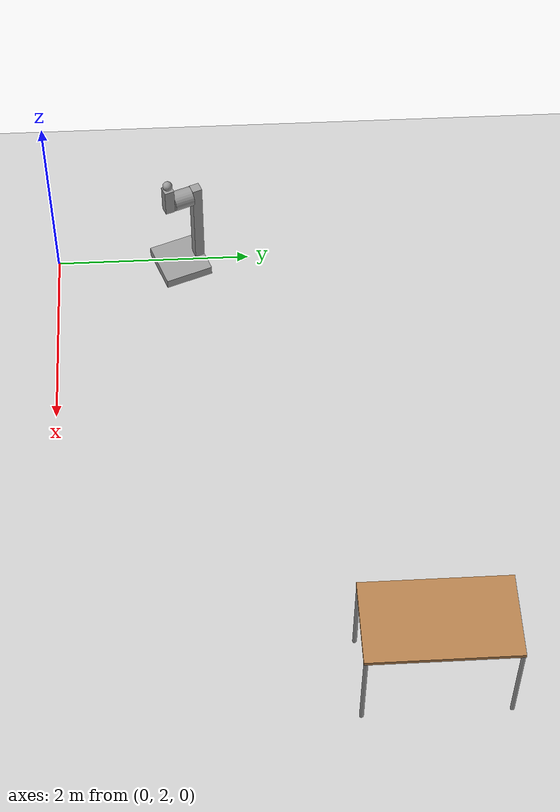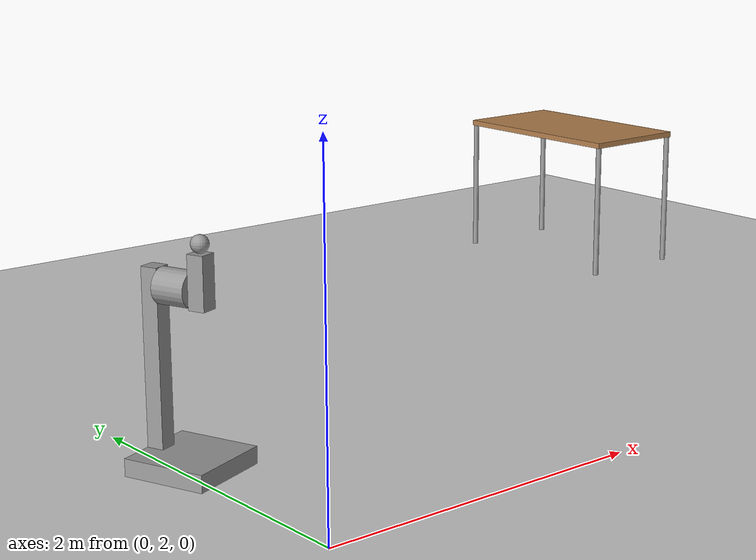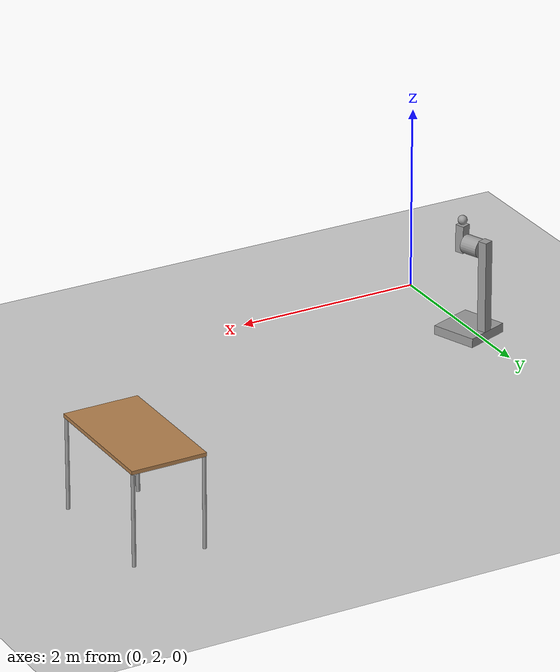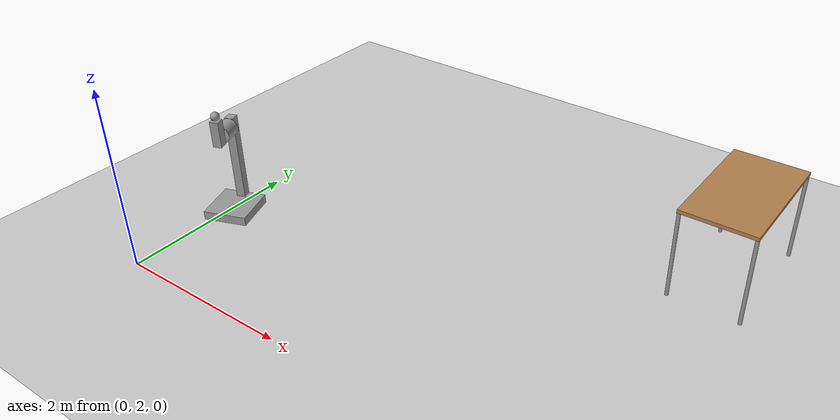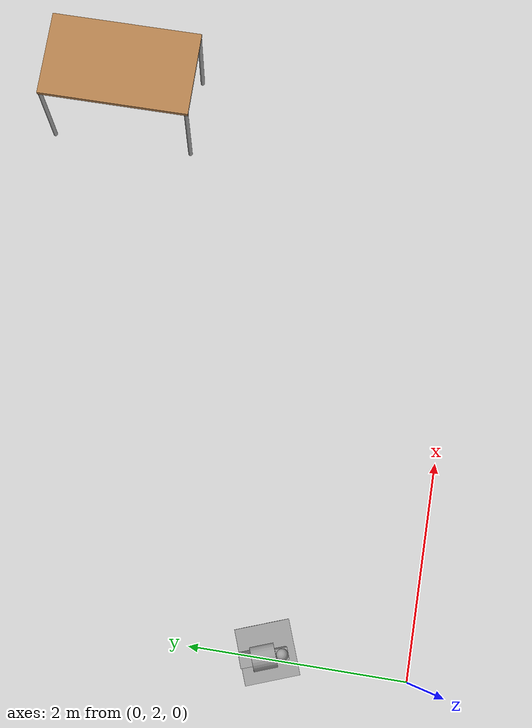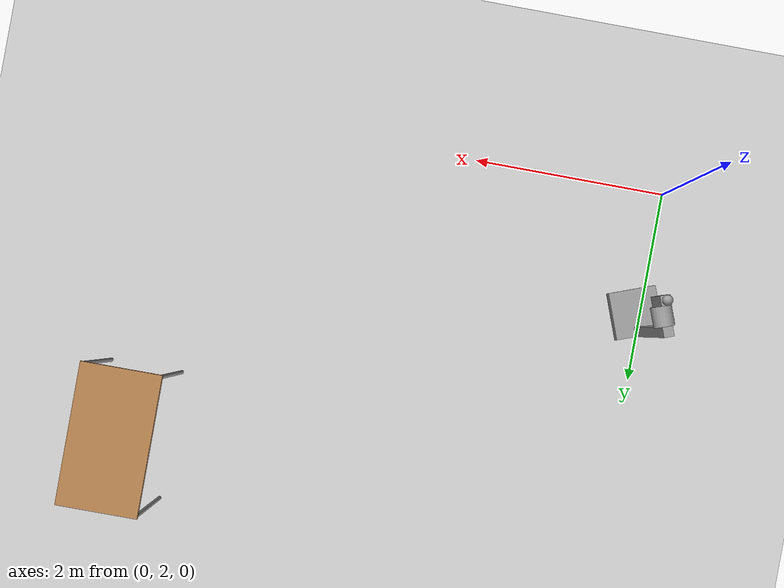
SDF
<sdf version="1.6">
 <world name="default">
  <model name="ground_plane">
   <static>1</static>
   <link name="link">
    <collision name="collision">
     <geometry><plane><normal>0 0 1</normal><size>100 100</size></plane></geometry>
     <surface><friction><ode><mu>100</mu><mu2>50</mu2></ode></friction></surface>
    </collision>
    <visual name="visual">
     <cast_shadows>0</cast_shadows>
     <geometry><plane><normal>0 0 1</normal><size>100 100</size></plane></geometry>
     <material>
      <script><uri>file://media/materials/scripts/gazebo.material</uri><name>Gazebo/Grey</name></script>
     </material>
    </visual>
   </link>
  </model>
  <model name="my_manipulator_3_clone">
   <link name="link_6">
    <pose>0 0.19001 -0.18999 0 -0 0</pose>
    <inertial>
     <mass>1</mass>
     <inertia>
      <ixx>0.166667</ixx>
      <ixy>0</ixy>
      <ixz>0</ixz>
      <iyy>0.166667</iyy>
      <iyz>0</iyz>
      <izz>0.166667</izz>
     </inertia>
    </inertial>
    <visual name="visual">
     <geometry><box><size>0.1 0.1 1</size></box></geometry>
     <material>
      <lighting>1</lighting>
      <script><uri>file://media/materials/scripts/gazebo.material</uri><name>Gazebo/Grey</name></script>
      <ambient>0.3 0.3 0.3 1</ambient>
      <diffuse>0.7 0.7 0.7 1</diffuse>
      <specular>0.01 0.01 0.01 1</specular>
      <emissive>0 0 0 1</emissive>
      <shader type="vertex"><normal_map>__default__</normal_map></shader>
     </material>
    </visual>
    <visual name="ModelPreview_3::link_6::visual_1">
     <geometry><box><size>0.1 0.1 1</size></box></geometry>
     <material>
      <lighting>1</lighting>
      <script><uri>file://media/materials/scripts/gazebo.material</uri><name>Gazebo/Grey</name></script>
      <ambient>0.3 0.3 0.3 1</ambient>
      <diffuse>0.7 0.7 0.7 1</diffuse>
      <specular>0.01 0.01 0.01 1</specular>
      <emissive>0 0 0 1</emissive>
      <shader type="vertex"><normal_map>__default__</normal_map></shader>
     </material>
    </visual>
    <collision name="collision">
     <geometry><box><size>0.1 0.1 1</size></box></geometry>
     <surface>
      <friction>
       <ode><mu>1</mu><mu2>1</mu2><fdir1>0 0 0</fdir1><slip1>0</slip1><slip2>0</slip2></ode>
       <torsional>
        <coefficient>1</coefficient>
        <patch_radius>0</patch_radius>
        <surface_radius>0</surface_radius>
        <use_patch_radius>1</use_patch_radius>
        <ode><slip>0</slip></ode>
       </torsional>
      </friction>
      <bounce><restitution_coefficient>0</restitution_coefficient><threshold>1e+06</threshold></bounce>
      <contact>
       <collide_without_contact>0</collide_without_contact>
       <collide_without_contact_bitmask>1</collide_without_contact_bitmask>
       <collide_bitmask>1</collide_bitmask>
       <ode>
        <soft_cfm>0</soft_cfm>
        <soft_erp>0.2</soft_erp>
        <kp>1e+13</kp>
        <kd>1</kd>
        <max_vel>0.01</max_vel>
        <min_depth>0</min_depth>
       </ode>
       <bullet>
        <split_impulse>1</split_impulse>
        <split_impulse_penetration_threshold>-0.01</split_impulse_penetration_threshold>
        <soft_cfm>0</soft_cfm>
        <soft_erp>0.2</soft_erp>
        <kp>1e+13</kp>
        <kd>1</kd>
       </bullet>
      </contact>
     </surface>
    </collision>
   </link>
   <link name="link_6_clone">
    <pose>0 -0.11001 0.259991 0 -0 0</pose>
    <inertial>
     <mass>1</mass>
     <inertia>
      <ixx>0.166667</ixx>
      <ixy>0</ixy>
      <ixz>0</ixz>
      <iyy>0.166667</iyy>
      <iyz>0</iyz>
      <izz>0.166667</izz>
     </inertia>
    </inertial>
    <visual name="visual">
     <geometry><box><size>0.1 0.1 0.3</size></box></geometry>
     <material>
      <lighting>1</lighting>
      <script><uri>file://media/materials/scripts/gazebo.material</uri><name>Gazebo/Grey</name></script>
      <ambient>0.3 0.3 0.3 1</ambient>
      <diffuse>0.7 0.7 0.7 1</diffuse>
      <specular>0.01 0.01 0.01 1</specular>
      <emissive>0 0 0 1</emissive>
      <shader type="vertex"><normal_map>__default__</normal_map></shader>
     </material>
    </visual>
    <collision name="collision">
     <geometry><box><size>0.1 0.1 0.3</size></box></geometry>
     <surface>
      <friction>
       <ode><mu>1</mu><mu2>1</mu2><fdir1>0 0 0</fdir1><slip1>0</slip1><slip2>0</slip2></ode>
       <torsional>
        <coefficient>1</coefficient>
        <patch_radius>0</patch_radius>
        <surface_radius>0</surface_radius>
        <use_patch_radius>1</use_patch_radius>
        <ode><slip>0</slip></ode>
       </torsional>
      </friction>
      <bounce><restitution_coefficient>0</restitution_coefficient><threshold>1e+06</threshold></bounce>
      <contact>
       <collide_without_contact>0</collide_without_contact>
       <collide_without_contact_bitmask>1</collide_without_contact_bitmask>
       <collide_bitmask>1</collide_bitmask>
       <ode>
        <soft_cfm>0</soft_cfm>
        <soft_erp>0.2</soft_erp>
        <kp>1e+13</kp>
        <kd>1</kd>
        <max_vel>0.01</max_vel>
        <min_depth>0</min_depth>
       </ode>
       <bullet>
        <split_impulse>1</split_impulse>
        <split_impulse_penetration_threshold>-0.01</split_impulse_penetration_threshold>
        <soft_cfm>0</soft_cfm>
        <soft_erp>0.2</soft_erp>
        <kp>1e+13</kp>
        <kd>1</kd>
       </bullet>
      </contact>
     </surface>
    </collision>
   </link>
   <link name="link_7">
    <pose>0 -0.00999 -0.73999 0 -0 0</pose>
    <inertial>
     <mass>1</mass>
     <inertia>
      <ixx>0.166667</ixx>
      <ixy>0</ixy>
      <ixz>0</ixz>
      <iyy>0.166667</iyy>
      <iyz>0</iyz>
      <izz>0.166667</izz>
     </inertia>
    </inertial>
    <visual name="visual">
     <geometry><box><size>0.5 0.5 0.1</size></box></geometry>
     <material>
      <lighting>1</lighting>
      <script><uri>file://media/materials/scripts/gazebo.material</uri><name>Gazebo/Grey</name></script>
      <ambient>0.3 0.3 0.3 1</ambient>
      <diffuse>0.7 0.7 0.7 1</diffuse>
      <specular>0.01 0.01 0.01 1</specular>
      <emissive>0 0 0 1</emissive>
      <shader type="vertex"><normal_map>__default__</normal_map></shader>
     </material>
    </visual>
    <collision name="collision">
     <geometry><box><size>0.5 0.5 0.1</size></box></geometry>
     <surface>
      <friction>
       <ode><mu>1</mu><mu2>1</mu2><fdir1>0 0 0</fdir1><slip1>0</slip1><slip2>0</slip2></ode>
       <torsional>
        <coefficient>1</coefficient>
        <patch_radius>0</patch_radius>
        <surface_radius>0</surface_radius>
        <use_patch_radius>1</use_patch_radius>
        <ode><slip>0</slip></ode>
       </torsional>
      </friction>
      <bounce><restitution_coefficient>0</restitution_coefficient><threshold>1e+06</threshold></bounce>
      <contact>
       <collide_without_contact>0</collide_without_contact>
       <collide_without_contact_bitmask>1</collide_without_contact_bitmask>
       <collide_bitmask>1</collide_bitmask>
       <ode>
        <soft_cfm>0</soft_cfm>
        <soft_erp>0.2</soft_erp>
        <kp>1e+13</kp>
        <kd>1</kd>
        <max_vel>0.01</max_vel>
        <min_depth>0</min_depth>
       </ode>
       <bullet>
        <split_impulse>1</split_impulse>
        <split_impulse_penetration_threshold>-0.01</split_impulse_penetration_threshold>
        <soft_cfm>0</soft_cfm>
        <soft_erp>0.2</soft_erp>
        <kp>1e+13</kp>
        <kd>1</kd>
       </bullet>
      </contact>
     </surface>
    </collision>
   </link>
   <link name="link_8">
    <pose>0 0.04 0.21 -1.5707 0 0</pose>
    <inertial>
     <mass>1</mass>
     <inertia><ixx>0.145833</ixx><ixy>0</ixy><ixz>0</ixz><iyy>0.145833</iyy><iyz>0</iyz><izz>0.125</izz></inertia>
    </inertial>
    <visual name="visual">
     <geometry><cylinder><radius>0.1</radius><length>0.2</length></cylinder></geometry>
     <material>
      <lighting>1</lighting>
      <script><uri>file://media/materials/scripts/gazebo.material</uri><name>Gazebo/Grey</name></script>
      <ambient>0.3 0.3 0.3 1</ambient>
      <diffuse>0.7 0.7 0.7 1</diffuse>
      <specular>0.01 0.01 0.01 1</specular>
      <emissive>0 0 0 1</emissive>
      <shader type="vertex"><normal_map>__default__</normal_map></shader>
     </material>
    </visual>
    <collision name="collision">
     <geometry><cylinder><radius>0.1</radius><length>0.2</length></cylinder></geometry>
     <surface>
      <friction>
       <ode><mu>1</mu><mu2>1</mu2><fdir1>0 0 0</fdir1><slip1>0</slip1><slip2>0</slip2></ode>
       <torsional>
        <coefficient>1</coefficient>
        <patch_radius>0</patch_radius>
        <surface_radius>0</surface_radius>
        <use_patch_radius>1</use_patch_radius>
        <ode><slip>0</slip></ode>
       </torsional>
      </friction>
      <bounce><restitution_coefficient>0</restitution_coefficient><threshold>1e+06</threshold></bounce>
      <contact>
       <collide_without_contact>0</collide_without_contact>
       <collide_without_contact_bitmask>1</collide_without_contact_bitmask>
       <collide_bitmask>1</collide_bitmask>
       <ode>
        <soft_cfm>0</soft_cfm>
        <soft_erp>0.2</soft_erp>
        <kp>1e+13</kp>
        <kd>1</kd>
        <max_vel>0.01</max_vel>
        <min_depth>0</min_depth>
       </ode>
       <bullet>
        <split_impulse>1</split_impulse>
        <split_impulse_penetration_threshold>-0.01</split_impulse_penetration_threshold>
        <soft_cfm>0</soft_cfm>
        <soft_erp>0.2</soft_erp>
        <kp>1e+13</kp>
        <kd>1</kd>
       </bullet>
      </contact>
     </surface>
    </collision>
   </link>
   <link name="link_9">
    <pose>0 -0.11001 0.459991 0 -0 0</pose>
    <inertial>
     <mass>1</mass>
     <inertia><ixx>0.1</ixx><ixy>0</ixy><ixz>0</ixz><iyy>0.1</iyy><iyz>0</iyz><izz>0.1</izz></inertia>
    </inertial>
    <visual name="visual">
     <geometry><sphere><radius>0.05</radius></sphere></geometry>
     <material>
      <lighting>1</lighting>
      <script><uri>file://media/materials/scripts/gazebo.material</uri><name>Gazebo/Grey</name></script>
      <ambient>0.3 0.3 0.3 1</ambient>
      <diffuse>0.7 0.7 0.7 1</diffuse>
      <specular>0.01 0.01 0.01 1</specular>
      <emissive>0 0 0 1</emissive>
      <shader type="vertex"><normal_map>__default__</normal_map></shader>
     </material>
    </visual>
    <collision name="collision">
     <geometry><sphere><radius>0.05</radius></sphere></geometry>
     <surface>
      <friction>
       <ode><mu>1</mu><mu2>1</mu2><fdir1>0 0 0</fdir1><slip1>0</slip1><slip2>0</slip2></ode>
       <torsional>
        <coefficient>1</coefficient>
        <patch_radius>0</patch_radius>
        <surface_radius>0</surface_radius>
        <use_patch_radius>1</use_patch_radius>
        <ode><slip>0</slip></ode>
       </torsional>
      </friction>
      <bounce><restitution_coefficient>0</restitution_coefficient><threshold>1e+06</threshold></bounce>
      <contact>
       <collide_without_contact>0</collide_without_contact>
       <collide_without_contact_bitmask>1</collide_without_contact_bitmask>
       <collide_bitmask>1</collide_bitmask>
       <ode>
        <soft_cfm>0</soft_cfm>
        <soft_erp>0.2</soft_erp>
        <kp>1e+13</kp>
        <kd>1</kd>
        <max_vel>0.01</max_vel>
        <min_depth>0</min_depth>
       </ode>
       <bullet>
        <split_impulse>1</split_impulse>
        <split_impulse_penetration_threshold>-0.01</split_impulse_penetration_threshold>
        <soft_cfm>0</soft_cfm>
        <soft_erp>0.2</soft_erp>
        <kp>1e+13</kp>
        <kd>1</kd>
       </bullet>
      </contact>
     </surface>
    </collision>
   </link>
   <joint name="link_6_JOINT_9" type="revolute">
    <parent>link_6</parent>
    <child>link_8</child>
    <axis>
     <xyz>0 0 -1</xyz>
     <use_parent_model_frame>0</use_parent_model_frame>
     <limit>
      <lower>-1.79769e+308</lower>
      <upper>1.79769e+308</upper>
      <effort>-1</effort>
      <velocity>-1</velocity>
     </limit>
     <dynamics>
      <spring_reference>0</spring_reference>
      <spring_stiffness>0</spring_stiffness>
      <damping>0</damping>
      <friction>0</friction>
     </dynamics>
    </axis>
    <physics>
     <ode><limit><cfm>0</cfm><erp>0.2</erp></limit><suspension><cfm>0</cfm><erp>0.2</erp></suspension></ode>
    </physics>
   </joint>
   <joint name="link_6_clone_JOINT_11" type="fixed">
    <parent>link_6_clone</parent>
    <child>link_9</child>
    <physics>
     <ode><limit><cfm>0</cfm><erp>0.2</erp></limit><suspension><cfm>0</cfm><erp>0.2</erp></suspension></ode>
    </physics>
   </joint>
   <joint name="link_7_JOINT_8" type="fixed">
    <parent>link_7</parent>
    <child>link_6</child>
    <physics>
     <ode><limit><cfm>0</cfm><erp>0.2</erp></limit><suspension><cfm>0</cfm><erp>0.2</erp></suspension></ode>
    </physics>
   </joint>
   <joint name="link_8_JOINT_10" type="fixed">
    <parent>link_8</parent>
    <child>link_6_clone</child>
    <physics>
     <ode><limit><cfm>0</cfm><erp>0.2</erp></limit><suspension><cfm>0</cfm><erp>0.2</erp></suspension></ode>
    </physics>
   </joint>
   <static>0</static>
   <pose>0.061665 3.29899 0.789989 -1e-06 -1e-06 0.357101</pose>
  </model>
  <model name="table_clone_0">
   <static>0</static>
   <link name="link">
    <collision name="surface">
     <pose>0 0 1 0 -0 0</pose>
     <geometry><box><size>1.5 0.8 0.03</size></box></geometry>
     <surface><friction><ode><mu>0.6</mu><mu2>0.6</mu2></ode></friction></surface>
    </collision>
    <visual name="visual1">
     <pose>0 0 1 0 -0 0</pose>
     <geometry><box><size>1.4 0.8 0.04</size></box></geometry>
     <material>
      <script><uri>file://media/materials/scripts/gazebo.material</uri><name>Gazebo/Wood</name></script>
     </material>
    </visual>
    <collision name="front_left_leg">
     <pose>0.68 0.38 0.5 0 -0 0</pose>
     <geometry><cylinder><radius>0.02</radius><length>1</length></cylinder></geometry>
    </collision>
    <visual name="front_left_leg">
     <pose>0.68 0.38 0.5 0 -0 0</pose>
     <geometry><cylinder><radius>0.02</radius><length>1</length></cylinder></geometry>
     <material>
      <script><uri>file://media/materials/scripts/gazebo.material</uri><name>Gazebo/Grey</name></script>
     </material>
    </visual>
    <collision name="front_right_leg">
     <pose>0.68 -0.38 0.5 0 -0 0</pose>
     <geometry><cylinder><radius>0.02</radius><length>1</length></cylinder></geometry>
    </collision>
    <visual name="front_right_leg">
     <pose>0.68 -0.38 0.5 0 -0 0</pose>
     <geometry><cylinder><radius>0.02</radius><length>1</length></cylinder></geometry>
     <material>
      <script><uri>file://media/materials/scripts/gazebo.material</uri><name>Gazebo/Grey</name></script>
     </material>
    </visual>
    <collision name="back_right_leg">
     <pose>-0.68 -0.38 0.5 0 -0 0</pose>
     <geometry><cylinder><radius>0.02</radius><length>1</length></cylinder></geometry>
    </collision>
    <visual name="back_right_leg">
     <pose>-0.68 -0.38 0.5 0 -0 0</pose>
     <geometry><cylinder><radius>0.02</radius><length>1</length></cylinder></geometry>
     <material>
      <script><uri>file://media/materials/scripts/gazebo.material</uri><name>Gazebo/Grey</name></script>
     </material>
    </visual>
    <collision name="back_left_leg">
     <pose>-0.68 0.38 0.5 0 -0 0</pose>
     <geometry><cylinder><radius>0.02</radius><length>1</length></cylinder></geometry>
    </collision>
    <visual name="back_left_leg">
     <pose>-0.68 0.38 0.5 0 -0 0</pose>
     <geometry><cylinder><radius>0.02</radius><length>1</length></cylinder></geometry>
     <material>
      <script><uri>file://media/materials/scripts/gazebo.material</uri><name>Gazebo/Grey</name></script>
     </material>
    </visual>
    <inertial>
     <inertia><ixx>1</ixx><ixy>0</ixy><ixz>0</ixz><iyy>1</iyy><iyz>0</iyz><izz>1</izz></inertia>
     <mass>1</mass>
    </inertial>
   </link>
   <pose>5.05612 5.46446 -1e-06 0 -1e-06 1.57643</pose>
  </model>
  <model name="white_ball">
   <pose>1.60245 8.58299 -14737.1 0 -0 0</pose>
   <link name="link_0">
    <pose>1.60245 8.58299 0.1 0 -0 0</pose>
    <inertial>
     <inertia><ixx>1</ixx><ixy>0</ixy><ixz>0</ixz><iyy>1</iyy><iyz>0</iyz><izz>1</izz></inertia>
     <mass>1</mass>
    </inertial>
   </link>
  </model>
  <model name="white_ball">
   <pose>1.60245 8.58299 -14737.1 0 -0 0</pose>
   <link name="link_0">
    <pose>1.60245 8.58299 0.1 0 -0 0</pose>
    <inertial>
     <inertia><ixx>1</ixx><ixy>0</ixy><ixz>0</ixz><iyy>1</iyy><iyz>0</iyz><izz>1</izz></inertia>
     <mass>1</mass>
    </inertial>
   </link>
  </model>
 </world>
</sdf>
